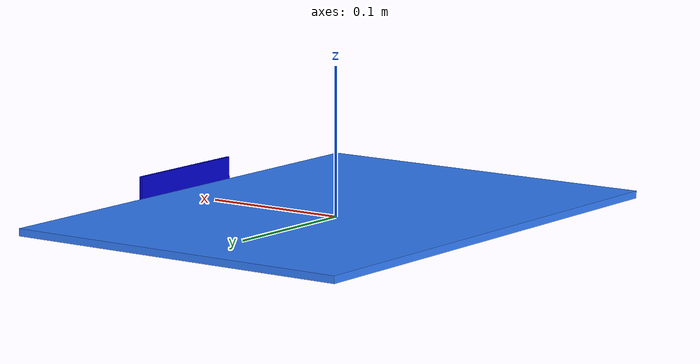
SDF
<?xml version="1.0" ?>
<sdf version="1.5">
  <model name="parked_car_1">
    <static>true</static>
    <link name="link">
      <visual name="body">
        <pose>0 0 0.0025 0 0 0</pose>
        <geometry>
          <box><size>0.25 0.345 0.005</size></box>
        </geometry>
        <material>
          <ambient>0.15 0.4 0.85 1</ambient>
          <diffuse>0.2 0.5 1.0 1</diffuse>
        </material>
      </visual>
      <visual name="plate">
        <pose>0.126 0 0.005 0 0 0</pose>
        <geometry>
          <box><size>0.002 0.095 0.03</size></box>
        </geometry>
        <material>
          <ambient>0.0 0.0 0.6 1</ambient>
          <diffuse>0.0 0.0 0.8 1</diffuse>
        </material>
      </visual>
      <collision name="collision">
        <pose>0 0 0.0025 0 0 0</pose>
        <geometry>
          <box><size>0.25 0.345 0.005</size></box>
        </geometry>
      </collision>
    </link>
  </model>
  <model name="parked_car_2">
    <static>true</static>
    <link name="link">
      <visual name="body">
        <pose>0 0 0.0025 0 0 0</pose>
        <geometry>
          <box><size>0.25 0.345 0.005</size></box>
        </geometry>
        <material>
          <ambient>0.15 0.4 0.85 1</ambient>
          <diffuse>0.2 0.5 1.0 1</diffuse>
        </material>
      </visual>
      <visual name="plate">
        <pose>0.126 0 0.005 0 0 0</pose>
        <geometry>
          <box><size>0.002 0.095 0.03</size></box>
        </geometry>
        <material>
          <ambient>0.0 0.0 0.6 1</ambient>
          <diffuse>0.0 0.0 0.8 1</diffuse>
        </material>
      </visual>
      <collision name="collision">
        <pose>0 0 0.0025 0 0 0</pose>
        <geometry>
          <box><size>0.25 0.345 0.005</size></box>
        </geometry>
      </collision>
    </link>
  </model>
  <model name="parked_car_3">
    <static>true</static>
    <link name="link">
      <visual name="body">
        <pose>0 0 0.0025 0 0 0</pose>
        <geometry>
          <box><size>0.25 0.345 0.005</size></box>
        </geometry>
        <material>
          <ambient>0.15 0.4 0.85 1</ambient>
          <diffuse>0.2 0.5 1.0 1</diffuse>
        </material>
      </visual>
      <visual name="plate">
        <pose>0.126 0 0.005 0 0 0</pose>
        <geometry>
          <box><size>0.002 0.095 0.03</size></box>
        </geometry>
        <material>
          <ambient>0.0 0.0 0.6 1</ambient>
          <diffuse>0.0 0.0 0.8 1</diffuse>
        </material>
      </visual>
      <collision name="collision">
        <pose>0 0 0.0025 0 0 0</pose>
        <geometry>
          <box><size>0.25 0.345 0.005</size></box>
        </geometry>
      </collision>
    </link>
  </model>
</sdf>
